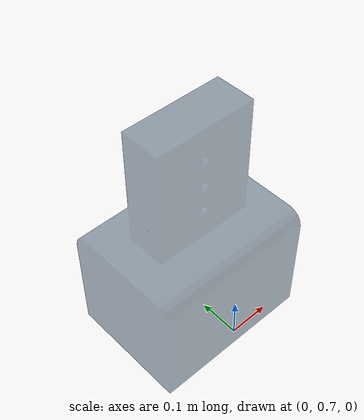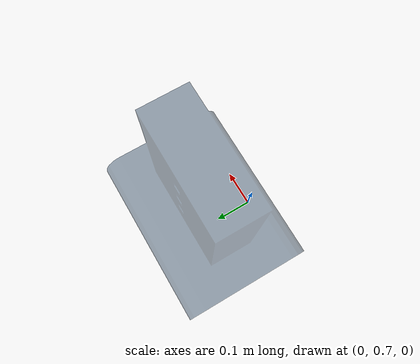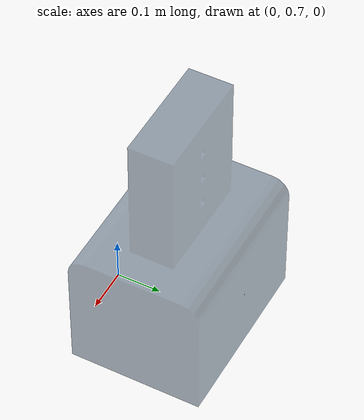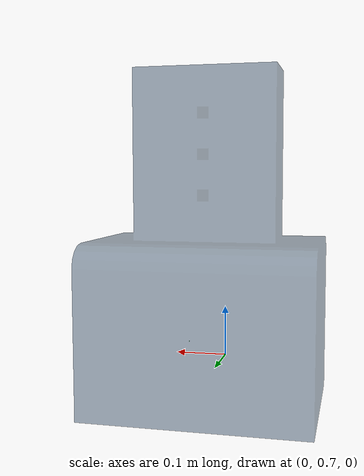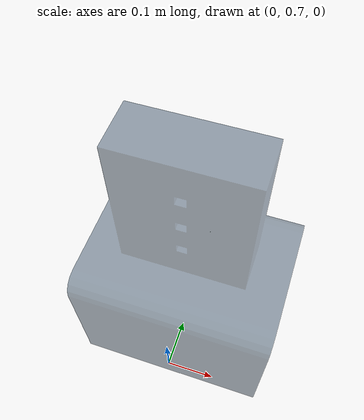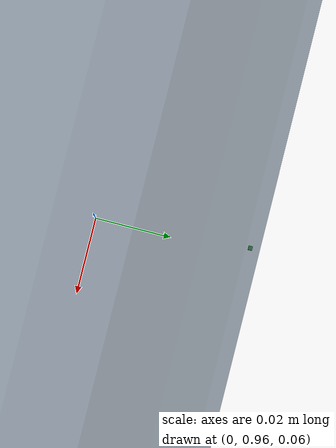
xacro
<?xml version="1.0"?>
<robot xmlns:xacro="http://www.ros.org/wiki/xacro"
       name="hole">

  <!-- hole -->
  <xacro:include filename="$(find ur_description)/urdf/hole.urdf.xacro"/>
  <link name="world" />
  <joint name="world_joint" type="fixed">
    <parent link="world" />
    <child link = "base_footprint" />
    <origin xyz="0.0 1 0.1" rpy="${pi/2} 0 0" />
  </joint>

</robot>

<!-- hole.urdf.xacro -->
<robot xmlns:xacro="http://www.ros.org/wiki/xacro"
    name="robot0">

    <xacro:macro name="default_inertial" params="mass">
               <inertial>
                       <mass value="${mass}" />
                       <inertia ixx="1" ixy="0.0" ixz="0.0"
                                iyy="1" iyz="0.0"
                                izz="1" />
               </inertial>
    </xacro:macro>

    <link name="base_footprint">
        <visual>
            <geometry>
                    <box size="0.001 0.001 0.001"/>
                </geometry>
            <origin rpy="0 0 0" xyz="0 0 0"/>
        </visual>
        <xacro:default_inertial mass="1"/>
    </link>

    <gazebo reference="base_footprint">
        <material>Gazebo/Green</material>
        <turnGravityOff>false</turnGravityOff>
    </gazebo>

    <joint name="base_footprint_joint" type="fixed">
        <origin xyz="0 0 0" />
        <parent link="base_footprint" />
        <child link="hole" />
    </joint>

<link
    name="hole">
    <inertial>
      <origin
        xyz="0 0 0"
        rpy="0 0 0" />
      <mass
        value="1" />
      <inertia
        ixx="1"
        ixy="0"
        ixz="0"
        iyy="1"
        iyz="0"
        izz="1" />
    </inertial>
    <visual>
      <origin
        xyz="0 0 0"
        rpy="0 0 0" />
      <geometry>
        <mesh
          filename="package://ur_description/meshes/ur5/collision/hole1.STL" />
      </geometry>
      <material
        name="">
        <color
          rgba="0.2 0.3 0.4 0.5" />
      </material>
    </visual>
    <collision>
      <origin
        xyz="0 0 0"
        rpy="0 0 0" />
      <geometry>
        <mesh
          filename="package://ur_description/meshes/ur5/collision/hole1.STL" />
      </geometry>
    </collision>
  </link>

</robot>
